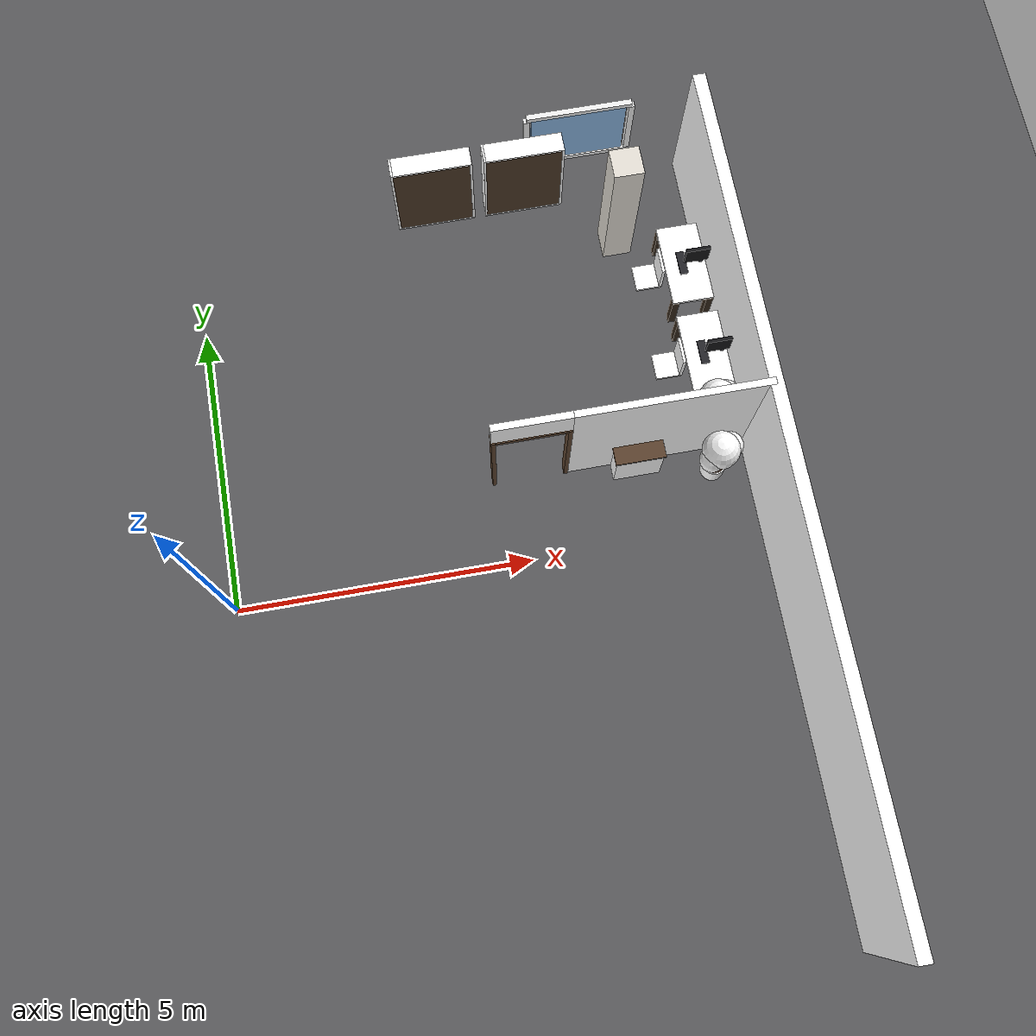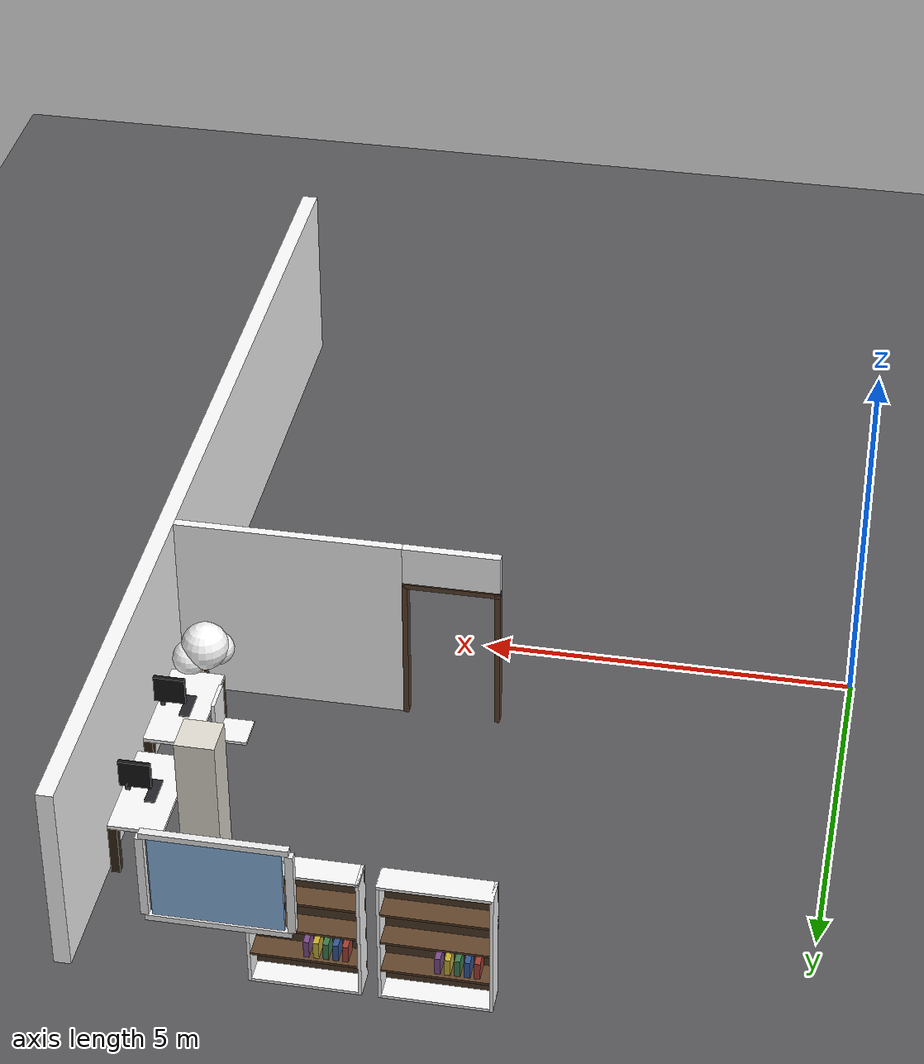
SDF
<sdf version="1.9">
 <world name="dan_house">
  <model name="ground_plane">
   <static>true</static>
   <link name="link">
    <collision name="c"><geometry><plane><normal>0 0 1</normal><size>90 90</size></plane></geometry></collision>
    <visual name="v">
     <geometry><plane><normal>0 0 1</normal><size>90 90</size></plane></geometry>
     <material><diffuse>0.35 0.35 0.36 1</diffuse></material>
    </visual>
   </link>
  </model>
  <model name="wall_east_0">
   <pose>9.0 0.000 1.35 0 0 0</pose>
   <static>true</static>
   <link name="link">
    <collision name="c"><geometry><box><size>0.22 14.000 2.7</size></box></geometry></collision>
    <visual name="v">
     <geometry><box><size>0.22 14.000 2.7</size></box></geometry>
     <material>
      <diffuse>1 1 1 1</diffuse>
      <pbr>
       <metal>
        <albedo_map>textures/wallpaper.jpg</albedo_map>
        <metalness>0.0</metalness>
        <roughness>0.85</roughness>
       </metal>
      </pbr>
     </material>
    </visual>
   </link>
  </model>
  <model name="wall_corr_north_3">
   <pose>7.425 1.5 1.35 0 0 0</pose>
   <static>true</static>
   <link name="link">
    <collision name="c"><geometry><box><size>3.150 0.12 2.7</size></box></geometry></collision>
    <visual name="v">
     <geometry><box><size>3.150 0.12 2.7</size></box></geometry>
     <material>
      <diffuse>1 1 1 1</diffuse>
      <pbr>
       <metal>
        <albedo_map>textures/wallpaper.jpg</albedo_map>
        <metalness>0.0</metalness>
        <roughness>0.85</roughness>
       </metal>
      </pbr>
     </material>
    </visual>
   </link>
  </model>
  <model name="wall_corr_north_door_5.2_p0">
   <pose>4.585 1.5 1.075 0 0 0</pose>
   <static>true</static>
   <link name="link">
    <visual name="v">
     <geometry><box><size>0.07 0.160 2.15</size></box></geometry>
     <material><diffuse>0.36 0.26 0.18 1</diffuse></material>
    </visual>
   </link>
  </model>
  <model name="wall_corr_north_door_5.2_p1">
   <pose>5.815 1.5 1.075 0 0 0</pose>
   <static>true</static>
   <link name="link">
    <visual name="v">
     <geometry><box><size>0.07 0.160 2.15</size></box></geometry>
     <material><diffuse>0.36 0.26 0.18 1</diffuse></material>
    </visual>
   </link>
  </model>
  <model name="wall_corr_north_door_5.2_top">
   <pose>5.2 1.5 2.1149999999999998 0 0 0</pose>
   <static>true</static>
   <link name="link">
    <visual name="v">
     <geometry><box><size>1.3 0.160 0.07</size></box></geometry>
     <material><diffuse>0.36 0.26 0.18 1</diffuse></material>
    </visual>
   </link>
  </model>
  <model name="wall_corr_north_door_5.2_lintel">
   <pose>5.2 1.5 2.4000000000000004 0 0 0</pose>
   <static>true</static>
   <link name="link">
    <visual name="v">
     <geometry><box><size>1.3 0.12 0.600</size></box></geometry>
     <material>
      <diffuse>1 1 1 1</diffuse>
      <pbr>
       <metal>
        <albedo_map>textures/wallpaper.jpg</albedo_map>
        <metalness>0.0</metalness>
        <roughness>0.85</roughness>
       </metal>
      </pbr>
     </material>
    </visual>
   </link>
  </model>
  <model name="window_n5">
   <pose>7.0 6.95 1.6 0 0 0</pose>
   <static>true</static>
   <link name="link">
    <visual name="pane">
     <geometry><box><size>1.62 0.06 1.2</size></box></geometry>
     <material><diffuse>0.55 0.72 0.9 1</diffuse><emissive>0.14 0.2 0.3</emissive></material>
    </visual>
    <visual name="ft">
     <pose>0 0 0.65 0 0 0</pose>
     <geometry><box><size>1.80 0.1 0.08</size></box></geometry>
     <material><diffuse>0.95 0.95 0.95 1</diffuse></material>
    </visual>
    <visual name="fb">
     <pose>0 0 -0.65 0 0 0</pose>
     <geometry><box><size>1.80 0.1 0.08</size></box></geometry>
     <material><diffuse>0.95 0.95 0.95 1</diffuse></material>
    </visual>
    <visual name="fl">
     <pose>-0.90 0 0 0 0 0</pose>
     <geometry><box><size>0.1 0.1 1.2</size></box></geometry>
     <material><diffuse>0.95 0.95 0.95 1</diffuse></material>
    </visual>
    <visual name="fr">
     <pose>0.90 0 0 0 0 0</pose>
     <geometry><box><size>0.1 0.1 1.2</size></box></geometry>
     <material><diffuse>0.95 0.95 0.95 1</diffuse></material>
    </visual>
   </link>
  </model>
  <model name="bookshelf_3">
   <pose>4.4 6.71 0 0 0 0.0</pose>
   <static>true</static>
   <link name="link">
    <collision name="c">
     <pose>0 0 0.9 0 0 0</pose>
     <geometry><box><size>1.4 0.35 1.8</size></box></geometry>
    </collision>
    <visual name="sl">
     <pose>-0.68 0 0.9 0 0 0</pose>
     <geometry><box><size>0.04 0.35 1.8</size></box></geometry>
     <material>
      <diffuse>1 1 1 1</diffuse>
      <pbr>
       <metal>
        <albedo_map>textures/wood_dark.jpg</albedo_map>
        <metalness>0.0</metalness>
        <roughness>0.85</roughness>
       </metal>
      </pbr>
     </material>
    </visual>
    <visual name="sr">
     <pose>0.68 0 0.9 0 0 0</pose>
     <geometry><box><size>0.04 0.35 1.8</size></box></geometry>
     <material>
      <diffuse>1 1 1 1</diffuse>
      <pbr>
       <metal>
        <albedo_map>textures/wood_dark.jpg</albedo_map>
        <metalness>0.0</metalness>
        <roughness>0.85</roughness>
       </metal>
      </pbr>
     </material>
    </visual>
    <visual name="top">
     <pose>0 0 1.78 0 0 0</pose>
     <geometry><box><size>1.4 0.35 0.04</size></box></geometry>
     <material>
      <diffuse>1 1 1 1</diffuse>
      <pbr>
       <metal>
        <albedo_map>textures/wood_dark.jpg</albedo_map>
        <metalness>0.0</metalness>
        <roughness>0.85</roughness>
       </metal>
      </pbr>
     </material>
    </visual>
    <visual name="bot">
     <pose>0 0 0.02 0 0 0</pose>
     <geometry><box><size>1.4 0.35 0.04</size></box></geometry>
     <material>
      <diffuse>1 1 1 1</diffuse>
      <pbr>
       <metal>
        <albedo_map>textures/wood_dark.jpg</albedo_map>
        <metalness>0.0</metalness>
        <roughness>0.85</roughness>
       </metal>
      </pbr>
     </material>
    </visual>
    <visual name="back">
     <pose>0 -0.155 0.9 0 0 0</pose>
     <geometry><box><size>1.4 0.04 1.72</size></box></geometry>
     <material><diffuse>0.3 0.22 0.15 1</diffuse></material>
    </visual>
    <visual name="s1">
     <pose>0 0.02 0.45 0 0 0</pose>
     <geometry><box><size>1.32 0.3 0.03</size></box></geometry>
     <material><diffuse>0.4 0.28 0.18 1</diffuse></material>
    </visual>
    <visual name="s2">
     <pose>0 0.02 0.9 0 0 0</pose>
     <geometry><box><size>1.32 0.3 0.03</size></box></geometry>
     <material><diffuse>0.4 0.28 0.18 1</diffuse></material>
    </visual>
    <visual name="s3">
     <pose>0 0.02 1.35 0 0 0</pose>
     <geometry><box><size>1.32 0.3 0.03</size></box></geometry>
     <material><diffuse>0.4 0.28 0.18 1</diffuse></material>
    </visual>
    <visual name="b1">
     <pose>-0.5 0 0.585 0 0 0</pose>
     <geometry><box><size>0.07 0.24 0.24</size></box></geometry>
     <material><diffuse>0.65 0.25 0.2 1</diffuse></material>
    </visual>
    <visual name="b2">
     <pose>-0.38 0 0.585 0 0 0</pose>
     <geometry><box><size>0.07 0.24 0.24</size></box></geometry>
     <material><diffuse>0.2 0.35 0.6 1</diffuse></material>
    </visual>
    <visual name="b3">
     <pose>-0.26 0 0.585 0 0 0</pose>
     <geometry><box><size>0.07 0.24 0.24</size></box></geometry>
     <material><diffuse>0.25 0.5 0.3 1</diffuse></material>
    </visual>
    <visual name="b4">
     <pose>-0.14 0 0.585 0 0 0</pose>
     <geometry><box><size>0.07 0.24 0.24</size></box></geometry>
     <material><diffuse>0.8 0.7 0.2 1</diffuse></material>
    </visual>
    <visual name="b5">
     <pose>-0.020000000000000018 0 0.585 0 0 0</pose>
     <geometry><box><size>0.07 0.24 0.24</size></box></geometry>
     <material><diffuse>0.5 0.3 0.55 1</diffuse></material>
    </visual>
   </link>
  </model>
  <model name="bookshelf_4">
   <pose>6.0 6.71 0 0 0 0.0</pose>
   <static>true</static>
   <link name="link">
    <collision name="c">
     <pose>0 0 0.9 0 0 0</pose>
     <geometry><box><size>1.4 0.35 1.8</size></box></geometry>
    </collision>
    <visual name="sl">
     <pose>-0.68 0 0.9 0 0 0</pose>
     <geometry><box><size>0.04 0.35 1.8</size></box></geometry>
     <material>
      <diffuse>1 1 1 1</diffuse>
      <pbr>
       <metal>
        <albedo_map>textures/wood_dark.jpg</albedo_map>
        <metalness>0.0</metalness>
        <roughness>0.85</roughness>
       </metal>
      </pbr>
     </material>
    </visual>
    <visual name="sr">
     <pose>0.68 0 0.9 0 0 0</pose>
     <geometry><box><size>0.04 0.35 1.8</size></box></geometry>
     <material>
      <diffuse>1 1 1 1</diffuse>
      <pbr>
       <metal>
        <albedo_map>textures/wood_dark.jpg</albedo_map>
        <metalness>0.0</metalness>
        <roughness>0.85</roughness>
       </metal>
      </pbr>
     </material>
    </visual>
    <visual name="top">
     <pose>0 0 1.78 0 0 0</pose>
     <geometry><box><size>1.4 0.35 0.04</size></box></geometry>
     <material>
      <diffuse>1 1 1 1</diffuse>
      <pbr>
       <metal>
        <albedo_map>textures/wood_dark.jpg</albedo_map>
        <metalness>0.0</metalness>
        <roughness>0.85</roughness>
       </metal>
      </pbr>
     </material>
    </visual>
    <visual name="bot">
     <pose>0 0 0.02 0 0 0</pose>
     <geometry><box><size>1.4 0.35 0.04</size></box></geometry>
     <material>
      <diffuse>1 1 1 1</diffuse>
      <pbr>
       <metal>
        <albedo_map>textures/wood_dark.jpg</albedo_map>
        <metalness>0.0</metalness>
        <roughness>0.85</roughness>
       </metal>
      </pbr>
     </material>
    </visual>
    <visual name="back">
     <pose>0 -0.155 0.9 0 0 0</pose>
     <geometry><box><size>1.4 0.04 1.72</size></box></geometry>
     <material><diffuse>0.3 0.22 0.15 1</diffuse></material>
    </visual>
    <visual name="s1">
     <pose>0 0.02 0.45 0 0 0</pose>
     <geometry><box><size>1.32 0.3 0.03</size></box></geometry>
     <material><diffuse>0.4 0.28 0.18 1</diffuse></material>
    </visual>
    <visual name="s2">
     <pose>0 0.02 0.9 0 0 0</pose>
     <geometry><box><size>1.32 0.3 0.03</size></box></geometry>
     <material><diffuse>0.4 0.28 0.18 1</diffuse></material>
    </visual>
    <visual name="s3">
     <pose>0 0.02 1.35 0 0 0</pose>
     <geometry><box><size>1.32 0.3 0.03</size></box></geometry>
     <material><diffuse>0.4 0.28 0.18 1</diffuse></material>
    </visual>
    <visual name="b1">
     <pose>-0.5 0 0.585 0 0 0</pose>
     <geometry><box><size>0.07 0.24 0.24</size></box></geometry>
     <material><diffuse>0.65 0.25 0.2 1</diffuse></material>
    </visual>
    <visual name="b2">
     <pose>-0.38 0 0.585 0 0 0</pose>
     <geometry><box><size>0.07 0.24 0.24</size></box></geometry>
     <material><diffuse>0.2 0.35 0.6 1</diffuse></material>
    </visual>
    <visual name="b3">
     <pose>-0.26 0 0.585 0 0 0</pose>
     <geometry><box><size>0.07 0.24 0.24</size></box></geometry>
     <material><diffuse>0.25 0.5 0.3 1</diffuse></material>
    </visual>
    <visual name="b4">
     <pose>-0.14 0 0.585 0 0 0</pose>
     <geometry><box><size>0.07 0.24 0.24</size></box></geometry>
     <material><diffuse>0.8 0.7 0.2 1</diffuse></material>
    </visual>
    <visual name="b5">
     <pose>-0.020000000000000018 0 0.585 0 0 0</pose>
     <geometry><box><size>0.07 0.24 0.24</size></box></geometry>
     <material><diffuse>0.5 0.3 0.55 1</diffuse></material>
    </visual>
   </link>
  </model>
  <model name="desk">
   <pose>8.5 4.6 0 0 0 -1.5708</pose>
   <static>true</static>
   <link name="link">
    <collision name="c">
     <pose>0 0 0.38 0 0 0</pose>
     <geometry><box><size>1.4 0.7 0.76</size></box></geometry>
    </collision>
    <visual name="top">
     <pose>0 0 0.75 0 0 0</pose>
     <geometry><box><size>1.45 0.72 0.05</size></box></geometry>
     <material>
      <diffuse>1 1 1 1</diffuse>
      <pbr>
       <metal>
        <albedo_map>textures/wood_dark.jpg</albedo_map>
        <metalness>0.0</metalness>
        <roughness>0.85</roughness>
       </metal>
      </pbr>
     </material>
    </visual>
    <visual name="leg1">
     <pose>-0.66 -0.3 0.36 0 0 0</pose>
     <geometry><box><size>0.12 0.12 0.72</size></box></geometry>
     <material><diffuse>0.2 0.15 0.1 1</diffuse></material>
    </visual>
    <visual name="leg2">
     <pose>0.66 -0.3 0.36 0 0 0</pose>
     <geometry><box><size>0.12 0.12 0.72</size></box></geometry>
     <material><diffuse>0.2 0.15 0.1 1</diffuse></material>
    </visual>
    <visual name="leg3">
     <pose>-0.66 0.3 0.36 0 0 0</pose>
     <geometry><box><size>0.12 0.12 0.72</size></box></geometry>
     <material><diffuse>0.2 0.15 0.1 1</diffuse></material>
    </visual>
    <visual name="leg4">
     <pose>0.66 0.3 0.36 0 0 0</pose>
     <geometry><box><size>0.12 0.12 0.72</size></box></geometry>
     <material><diffuse>0.2 0.15 0.1 1</diffuse></material>
    </visual>
    <visual name="monitor">
     <pose>0 0.28 1.03 0 0 0</pose>
     <geometry><box><size>0.06 0.62 0.38</size></box></geometry>
     <material><diffuse>0.08 0.08 0.09 1</diffuse></material>
    </visual>
    <visual name="mstand">
     <pose>0 0.28 0.83 0 0 0</pose>
     <geometry><box><size>0.06 0.06 0.12</size></box></geometry>
     <material><diffuse>0.3 0.3 0.32 1</diffuse></material>
    </visual>
    <visual name="keyb">
     <pose>0 -0.05 0.785 0 0 0</pose>
     <geometry><box><size>0.42 0.14 0.02</size></box></geometry>
     <material><diffuse>0.15 0.15 0.17 1</diffuse></material>
    </visual>
   </link>
  </model>
  <model name="desk_2">
   <pose>8.5 2.9 0 0 0 -1.5708</pose>
   <static>true</static>
   <link name="link">
    <collision name="c">
     <pose>0 0 0.38 0 0 0</pose>
     <geometry><box><size>1.4 0.7 0.76</size></box></geometry>
    </collision>
    <visual name="top">
     <pose>0 0 0.75 0 0 0</pose>
     <geometry><box><size>1.45 0.72 0.05</size></box></geometry>
     <material>
      <diffuse>1 1 1 1</diffuse>
      <pbr>
       <metal>
        <albedo_map>textures/wood_dark.jpg</albedo_map>
        <metalness>0.0</metalness>
        <roughness>0.85</roughness>
       </metal>
      </pbr>
     </material>
    </visual>
    <visual name="leg1">
     <pose>-0.66 -0.3 0.36 0 0 0</pose>
     <geometry><box><size>0.12 0.12 0.72</size></box></geometry>
     <material><diffuse>0.2 0.15 0.1 1</diffuse></material>
    </visual>
    <visual name="leg2">
     <pose>0.66 -0.3 0.36 0 0 0</pose>
     <geometry><box><size>0.12 0.12 0.72</size></box></geometry>
     <material><diffuse>0.2 0.15 0.1 1</diffuse></material>
    </visual>
    <visual name="leg3">
     <pose>-0.66 0.3 0.36 0 0 0</pose>
     <geometry><box><size>0.12 0.12 0.72</size></box></geometry>
     <material><diffuse>0.2 0.15 0.1 1</diffuse></material>
    </visual>
    <visual name="leg4">
     <pose>0.66 0.3 0.36 0 0 0</pose>
     <geometry><box><size>0.12 0.12 0.72</size></box></geometry>
     <material><diffuse>0.2 0.15 0.1 1</diffuse></material>
    </visual>
    <visual name="monitor">
     <pose>0 0.28 1.03 0 0 0</pose>
     <geometry><box><size>0.06 0.62 0.38</size></box></geometry>
     <material><diffuse>0.08 0.08 0.09 1</diffuse></material>
    </visual>
    <visual name="mstand">
     <pose>0 0.28 0.83 0 0 0</pose>
     <geometry><box><size>0.06 0.06 0.12</size></box></geometry>
     <material><diffuse>0.3 0.3 0.32 1</diffuse></material>
    </visual>
    <visual name="keyb">
     <pose>0 -0.05 0.785 0 0 0</pose>
     <geometry><box><size>0.42 0.14 0.02</size></box></geometry>
     <material><diffuse>0.15 0.15 0.17 1</diffuse></material>
    </visual>
   </link>
  </model>
  <model name="chair_3">
   <pose>7.85 4.6 0 0 0 1.5708</pose>
   <static>true</static>
   <link name="link">
    <collision name="c">
     <pose>0 0 0.475 0 0 0</pose>
     <geometry><box><size>0.45 0.45 0.95</size></box></geometry>
    </collision>
    <visual name="seat">
     <pose>0 0 0.45 0 0 0</pose>
     <geometry><box><size>0.45 0.45 0.04</size></box></geometry>
     <material>
      <diffuse>1 1 1 1</diffuse>
      <pbr>
       <metal>
        <albedo_map>textures/wood_dark.jpg</albedo_map>
        <metalness>0.0</metalness>
        <roughness>0.85</roughness>
       </metal>
      </pbr>
     </material>
    </visual>
    <visual name="back">
     <pose>0 -0.2 0.75 0 0 0</pose>
     <geometry><box><size>0.45 0.05 0.55</size></box></geometry>
     <material>
      <diffuse>1 1 1 1</diffuse>
      <pbr>
       <metal>
        <albedo_map>textures/wood_dark.jpg</albedo_map>
        <metalness>0.0</metalness>
        <roughness>0.85</roughness>
       </metal>
      </pbr>
     </material>
    </visual>
   </link>
  </model>
  <model name="chair_4">
   <pose>7.85 2.9 0 0 0 1.5708</pose>
   <static>true</static>
   <link name="link">
    <collision name="c">
     <pose>0 0 0.475 0 0 0</pose>
     <geometry><box><size>0.45 0.45 0.95</size></box></geometry>
    </collision>
    <visual name="seat">
     <pose>0 0 0.45 0 0 0</pose>
     <geometry><box><size>0.45 0.45 0.04</size></box></geometry>
     <material>
      <diffuse>1 1 1 1</diffuse>
      <pbr>
       <metal>
        <albedo_map>textures/wood_dark.jpg</albedo_map>
        <metalness>0.0</metalness>
        <roughness>0.85</roughness>
       </metal>
      </pbr>
     </material>
    </visual>
    <visual name="back">
     <pose>0 -0.2 0.75 0 0 0</pose>
     <geometry><box><size>0.45 0.05 0.55</size></box></geometry>
     <material>
      <diffuse>1 1 1 1</diffuse>
      <pbr>
       <metal>
        <albedo_map>textures/wood_dark.jpg</albedo_map>
        <metalness>0.0</metalness>
        <roughness>0.85</roughness>
       </metal>
      </pbr>
     </material>
    </visual>
   </link>
  </model>
  <model name="pillar">
   <pose>7.5 5.6 0 0 0 0</pose>
   <static>true</static>
   <link name="link">
    <collision name="c">
     <pose>0 0 1.35 0 0 0</pose>
     <geometry><box><size>0.5 0.5 2.7</size></box></geometry>
    </collision>
    <visual name="v">
     <pose>0 0 1.35 0 0 0</pose>
     <geometry><box><size>0.5 0.5 2.7</size></box></geometry>
     <material><diffuse>0.9 0.88 0.84 1</diffuse></material>
    </visual>
   </link>
  </model>
  <model name="plant_2">
   <pose>8.45 1.95 0 0 0 0</pose>
   <static>true</static>
   <link name="link">
    <collision name="pot_c">
     <pose>0 0 0.175 0 0 0</pose>
     <geometry><cylinder><radius>0.2</radius><length>0.35</length></cylinder></geometry>
    </collision>
    <collision name="leaf_c">
     <pose>0 0 0.8 0 0 0</pose>
     <geometry><cylinder><radius>0.38</radius><length>0.9</length></cylinder></geometry>
    </collision>
    <visual name="pot">
     <pose>0 0 0.175 0 0 0</pose>
     <geometry><cylinder><radius>0.2</radius><length>0.35</length></cylinder></geometry>
     <material>
      <diffuse>1 1 1 1</diffuse>
      <pbr>
       <metal>
        <albedo_map>textures/terracotta.jpg</albedo_map>
        <metalness>0.0</metalness>
        <roughness>0.85</roughness>
       </metal>
      </pbr>
     </material>
    </visual>
    <visual name="soil">
     <pose>0 0 0.36 0 0 0</pose>
     <geometry><cylinder><radius>0.18</radius><length>0.02</length></cylinder></geometry>
     <material><diffuse>0.2 0.14 0.1 1</diffuse></material>
    </visual>
    <visual name="trunk">
     <pose>0 0 0.63 0 0 0</pose>
     <geometry><cylinder><radius>0.03</radius><length>0.55</length></cylinder></geometry>
     <material><diffuse>0.35 0.25 0.15 1</diffuse></material>
    </visual>
    <visual name="lf1">
     <pose>0 0 1.05 0 0 0</pose>
     <geometry><sphere><radius>0.32</radius></sphere></geometry>
     <material>
      <diffuse>1 1 1 1</diffuse>
      <pbr>
       <metal><albedo_map>textures/leaf.jpg</albedo_map><metalness>0.0</metalness><roughness>0.85</roughness></metal>
      </pbr>
     </material>
    </visual>
    <visual name="lf2">
     <pose>0.18 0.1 0.9 0 0 0</pose>
     <geometry><sphere><radius>0.24</radius></sphere></geometry>
     <material>
      <diffuse>1 1 1 1</diffuse>
      <pbr>
       <metal><albedo_map>textures/leaf.jpg</albedo_map><metalness>0.0</metalness><roughness>0.85</roughness></metal>
      </pbr>
     </material>
    </visual>
    <visual name="lf3">
     <pose>-0.15 -0.1 0.95 0 0 0</pose>
     <geometry><sphere><radius>0.22</radius></sphere></geometry>
     <material>
      <diffuse>1 1 1 1</diffuse>
      <pbr>
       <metal><albedo_map>textures/leaf.jpg</albedo_map><metalness>0.0</metalness><roughness>0.85</roughness></metal>
      </pbr>
     </material>
    </visual>
   </link>
  </model>
  <model name="plant_4">
   <pose>8.3 1.05 0 0 0 0</pose>
   <static>true</static>
   <link name="link">
    <collision name="pot_c">
     <pose>0 0 0.175 0 0 0</pose>
     <geometry><cylinder><radius>0.2</radius><length>0.35</length></cylinder></geometry>
    </collision>
    <collision name="leaf_c">
     <pose>0 0 0.8 0 0 0</pose>
     <geometry><cylinder><radius>0.38</radius><length>0.9</length></cylinder></geometry>
    </collision>
    <visual name="pot">
     <pose>0 0 0.175 0 0 0</pose>
     <geometry><cylinder><radius>0.2</radius><length>0.35</length></cylinder></geometry>
     <material>
      <diffuse>1 1 1 1</diffuse>
      <pbr>
       <metal>
        <albedo_map>textures/terracotta.jpg</albedo_map>
        <metalness>0.0</metalness>
        <roughness>0.85</roughness>
       </metal>
      </pbr>
     </material>
    </visual>
    <visual name="soil">
     <pose>0 0 0.36 0 0 0</pose>
     <geometry><cylinder><radius>0.18</radius><length>0.02</length></cylinder></geometry>
     <material><diffuse>0.2 0.14 0.1 1</diffuse></material>
    </visual>
    <visual name="trunk">
     <pose>0 0 0.63 0 0 0</pose>
     <geometry><cylinder><radius>0.03</radius><length>0.55</length></cylinder></geometry>
     <material><diffuse>0.35 0.25 0.15 1</diffuse></material>
    </visual>
    <visual name="lf1">
     <pose>0 0 1.05 0 0 0</pose>
     <geometry><sphere><radius>0.32</radius></sphere></geometry>
     <material>
      <diffuse>1 1 1 1</diffuse>
      <pbr>
       <metal><albedo_map>textures/leaf.jpg</albedo_map><metalness>0.0</metalness><roughness>0.85</roughness></metal>
      </pbr>
     </material>
    </visual>
    <visual name="lf2">
     <pose>0.18 0.1 0.9 0 0 0</pose>
     <geometry><sphere><radius>0.24</radius></sphere></geometry>
     <material>
      <diffuse>1 1 1 1</diffuse>
      <pbr>
       <metal><albedo_map>textures/leaf.jpg</albedo_map><metalness>0.0</metalness><roughness>0.85</roughness></metal>
      </pbr>
     </material>
    </visual>
    <visual name="lf3">
     <pose>-0.15 -0.1 0.95 0 0 0</pose>
     <geometry><sphere><radius>0.22</radius></sphere></geometry>
     <material>
      <diffuse>1 1 1 1</diffuse>
      <pbr>
       <metal><albedo_map>textures/leaf.jpg</albedo_map><metalness>0.0</metalness><roughness>0.85</roughness></metal>
      </pbr>
     </material>
    </visual>
   </link>
  </model>
  <model name="console_table_3">
   <pose>7.0 1.29 0 0 0 0</pose>
   <static>true</static>
   <link name="link">
    <collision name="c">
     <pose>0 0 0.43 0 0 0</pose>
     <geometry><box><size>0.8 0.26 0.86</size></box></geometry>
    </collision>
    <visual name="body">
     <pose>0 0 0.43 0 0 0</pose>
     <geometry><box><size>0.8 0.26 0.86</size></box></geometry>
     <material>
      <diffuse>1 1 1 1</diffuse>
      <pbr>
       <metal>
        <albedo_map>textures/wood_dark.jpg</albedo_map>
        <metalness>0.0</metalness>
        <roughness>0.85</roughness>
       </metal>
      </pbr>
     </material>
    </visual>
    <visual name="top">
     <pose>0 0 0.88 0 0 0</pose>
     <geometry><box><size>0.8500000000000001 0.31 0.04</size></box></geometry>
     <material><diffuse>0.36 0.26 0.18 1</diffuse></material>
    </visual>
   </link>
  </model>
 </world>
</sdf>
